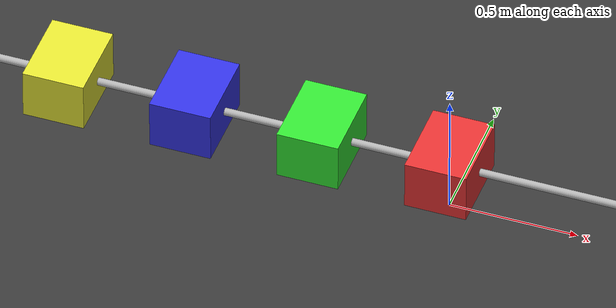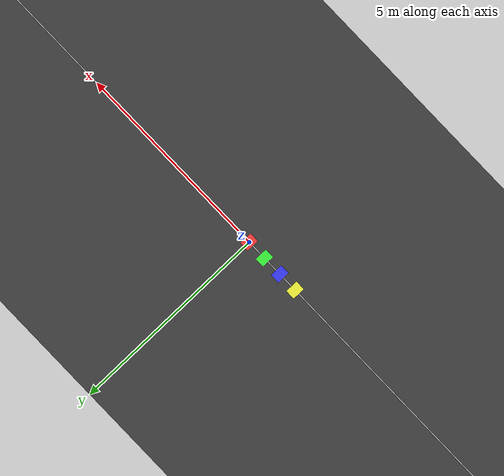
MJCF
<mujoco model="linear_moving_platoon">
    <compiler angle="radian"/>

    <option timestep="0.002" integrator="RK4" gravity="0 0 -9.81"/>

    <asset>
        <texture type="skybox" builtin="gradient" rgb1="0.2 0.3 0.4" rgb2="0 0 0" width="512" height="512"/>
        <texture name="grid" type="2d" builtin="checker" rgb1="0.15 0.15 0.15" rgb2="0.3 0.3 0.3" width="300" height="300"/>
        <material name="grid_mat" texture="grid" texrepeat="50 5" texuniform="true" reflectance="0.1"/>
    </asset>

    <worldbody>
        <light pos="0 0 6" dir="0 0 -1" directional="true" castshadow="false"/>

        <!-- Extended Ground Runway (100m total length) -->
        <geom name="ground" type="plane" size="50 5 0.1" material="grid_mat"/>

        <!-- Extended Guide Rail (100m total length) -->
        <geom name="rail" type="cylinder" pos="0 0 0.2" size="0.015 50" euler="0 1.57079632679 0" rgba="0.7 0.7 0.7 1"/>

        <!--
            BUNCHED UP INITIAL POSITIONS:
            Cars start merely 0.5m apart.
            The LQR will force them to spread out to the target distance while moving forward.
        -->
        <body name="car1" pos="0 0 0.2">
            <joint name="q1" type="slide" axis="1 0 0" damping="0" frictionloss="0"/>
            <geom name="car1_geom" type="box" size="0.12 0.16 0.1" mass="1.0" contype="0" conaffinity="0" rgba="0.9 0.2 0.2 1"/>
        </body>

        <body name="car2" pos="-0.5 0 0.2">
            <joint name="q2" type="slide" axis="1 0 0" damping="0" frictionloss="0"/>
            <geom name="car2_geom" type="box" size="0.12 0.16 0.1" mass="1.2" contype="0" conaffinity="0" rgba="0.2 0.9 0.2 1"/>
        </body>

        <body name="car3" pos="-1.0 0 0.2">
            <joint name="q3" type="slide" axis="1 0 0" damping="0" frictionloss="0"/>
            <geom name="car3_geom" type="box" size="0.12 0.16 0.1" mass="1.4" contype="0" conaffinity="0" rgba="0.2 0.2 0.9 1"/>
        </body>

        <body name="car4" pos="-1.5 0 0.2">
            <joint name="q4" type="slide" axis="1 0 0" damping="0" frictionloss="0"/>
            <geom name="car4_geom" type="box" size="0.12 0.16 0.1" mass="1.6" contype="0" conaffinity="0" rgba="0.9 0.9 0.2 1"/>
        </body>
    </worldbody>

    <actuator>
        <!-- Increased control bounds to accommodate accelerating to a cruising speed -->
        <motor name="m1" joint="q1" gear="1" ctrllimited="true" ctrlrange="-300 300"/>
        <motor name="m2" joint="q2" gear="1" ctrllimited="true" ctrlrange="-300 300"/>
        <motor name="m3" joint="q3" gear="1" ctrllimited="true" ctrlrange="-300 300"/>
        <motor name="m4" joint="q4" gear="1" ctrllimited="true" ctrlrange="-300 300"/>
    </actuator>
</mujoco>
